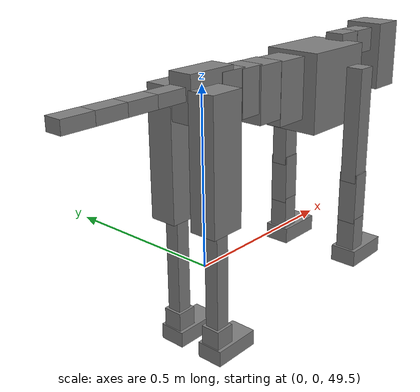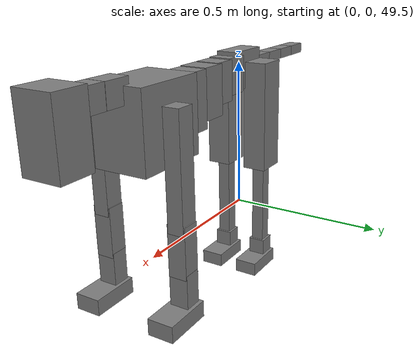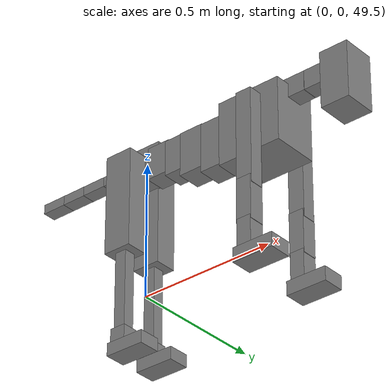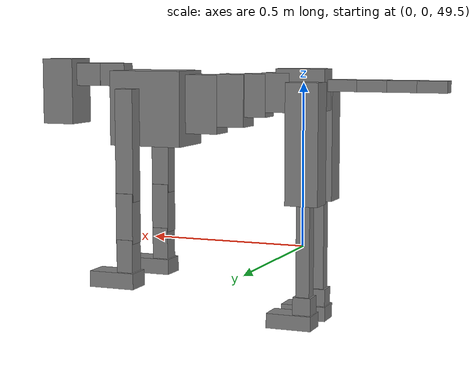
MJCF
<mujoco model="dog">

    <default>
        <joint armature="0.02" stiffness="1" damping="0.2" limited="true"/>
        <geom condim="3" friction="1 0.05 0.05" margin="0.01"/>
        <motor ctrllimited="true" ctrlrange="-1.0 1.0" forcelimited="true" gear="50"/>
    </default>

    <compiler inertiafromgeom="true" angle="radian"/>

    <option timestep="0.016" iterations="50" tolerance="1e-10" solver="Newton" jacobian="dense" cone="pyramidal"/>

    <size nconmax="20000" njmax="60000" nstack="5000000"/>
    <visual>
        <map force="0.1" zfar="30"/>
        <rgba haze="0.15 0.25 0.35 1"/>
        <quality shadowsize="2048"/>
        <global offwidth="800" offheight="800"/>
    </visual>

    <asset>
        <texture type="skybox" builtin="gradient" rgb1="0.3 0.5 0.7" rgb2="0 0 0" width="512" height="512"/>
        <texture name="texplane" type="2d" builtin="checker" rgb1=".2 .3 .4" rgb2=".1 0.15 0.2" width="512" height="512"
                 mark="cross" markrgb=".8 .8 .8"/>
        <texture name="texgeom" type="cube" builtin="flat" mark="cross" width="127" height="1278" rgb1="0.8 0.6 0.4"
                 rgb2="0.8 0.6 0.4" markrgb="1 1 1" random="0.01"/>

        <material name="matplane" reflectance="0.3" texture="texplane" texrepeat="1 1" texuniform="true"/>
        <material name="matgeom" texture="texgeom" texuniform="true" rgba="0.8 0.6 .4 1"/>
    </asset>

    <worldbody>
        <geom name="floor" pos="0 0 0" size="0 0 .25" type="plane" material="matplane" condim="3"/>

        <light directional="false" diffuse=".2 .2 .2" specular="0 0 0" pos="0 0 5" dir="0 0 -1" castshadow="false"/>
        <light mode="targetbodycom" target="torso" directional="false" diffuse=".8 .8 .8" specular="0.3 0.3 0.3"
               pos="0 0 4.0" dir="0 0 -1"/>

        <body name="root" pos="0 0 50">
            <freejoint name="root_1"/>
            <geom type="box" pos="0 0 -0.02" size="0.0774  0.0358  0.063" density="2030"/>

            <body name="spine1" pos="0.054 0 0">
                <joint name="spine1_y" axis="0 1 0" range="0 0.7" limited="true"/>
                <geom type="box" pos="0.02375 0 -0.03" size="0.04375  0.0375  0.05985" density="2030"/>

                <body name="spine2" pos="0.0612 0 0">
                    <joint name="spine2_y" axis="0 1 0" range="-0.15 0.15" limited="true"/>
                    <geom type="box" pos="0.03555  0  -0.04" size="0.04055  0.039  0.06615" density="2030"/>

                    <body name="spine3" pos="0.0730 0 0">
                        <joint name="spine3_y" axis="0 1 0" range="-0.15 0.15" limited="true"/>
                        <geom type="box" pos="0.03555  0  -0.057" size="0.04555  0.0445  0.081" density="2030"/>

                        <body name="spine4" pos="0.0780 0 0">
                            <joint name="spine4_y" axis="0 1 0" range="-0.15 0.15" limited="true"/>
                            <geom type="box" pos="0.05265  0  -0.07" size="0.05265  0.045  0.09135" density="2030"/>

                            <body name="torso" pos="0.1082 0 0">
                                <joint name="torso_y" axis="0 1 0" range="-0.15 0.15" limited="true"/>
                                <geom type="box" pos="0.11925  0  -0.085" size="0.11925  0.085  0.11745"
                                      density="2030"/>

                                <body name="neck1" pos="0.2160  0   0.0180">
                                    <joint name="neck1_y" axis="0 1 0" range="-1.2  -1" limited="true"/>
                                    <geom type="box" pos="0.0423  0  0" size="0.0423  0.03  0.036" density="2325"/>

                                    <body name="neck2" pos="0.0853  0  0">
                                        <joint name="neck2_y" axis="0 1 0" range="0.1  0" limited="true"/>
                                        <geom type="box" pos="0.0423  0  0" size="0.0423  0.03  0.036" density="2325"/>

                                        <body name="head" pos="0.0853  0  0">
                                            <joint name="head_y" axis="0 1 0" range="-0.3  -0.2" limited="true"/>
                                            <geom type="box" pos="0.0531  0  -0.055" size="0.0531  0.06  0.1044"
                                                  density="4030"/>

                                        </body>
                                    </body>
                                </body>

                                <body name="front_shoulder" pos="0.156  0   -0.0480">
                                    <joint name="front_shoulder_y" axis="0 1 0" range="-1 1.5" limited="true"/>
                                    <geom type="box" pos="0 0.13 -0.1482" size="0.0295  0.0252  0.1748" density="1158"/>
                                    <geom type="box" pos="0 -0.13 -0.1482" size="0.0295  0.0252  0.1748"
                                          density="1158"/>

                                    <body name="front_elbow" pos="0  0  -0.2964">
                                        <joint name="front_elbow_y" axis="0 1 0" range="-2 0" limited="true"/>
                                        <geom type="box" pos="0 0.13 -0.0790" size="0.0280  0.0287  0.0790"
                                              density="1081"/>
                                        <geom type="box" pos="0 -0.13 -0.0790" size="0.0280  0.0287  0.0790"
                                              density="1081"/>

                                        <body name="front_wrist" pos="0  0  -0.1580">
                                            <joint name="front_wrist_y" axis="0 1 0" range="-0.2 0" limited="true"/>
                                            <geom type="box" pos="0 0.13 -0.0522" size="0.0265  0.0295  0.0654"
                                                  density="1664"/>
                                            <geom type="box" pos="0 -0.13 -0.0522" size="0.0265  0.0295  0.0654"
                                                  density="1664"/>

                                            <body name="front_finger_end" pos="0  0  -0.1045">
                                                <joint name="front_finger_y" axis="0 1 0" range="-0.4 1"
                                                       limited="true"/>
                                                <geom type="box" pos="0.0408  0.13  -0.0103"
                                                      size="0.0748  0.0408  0.0253" density="1515"/>
                                                <geom type="box" pos="0.0408  -0.13  -0.0103"
                                                      size="0.0748  0.0408  0.0253" density="1515"/>

                                            </body>

                                        </body>
                                    </body>
                                </body>

                            </body>
                        </body>
                    </body>
                </body>
            </body>

            <body name="back_hip" pos="-0.03 0 -0.018">
                <joint name="back_hip_y" axis="0 1 0" range="-1.5 0.3" limited="true"/>
                <geom type="box" pos="0 0.07 -0.1607" size="0.0513  0.0403  0.1835" density="1154"/>
                <geom type="box" pos="0 -0.07 -0.1607" size="0.0513  0.0403  0.1835" density="1154"/>

                <body name="back_knee" pos="0  0  -0.3214">
                    <joint name="back_knee_y" axis="0 1 0" range="0 2.8" limited="true"/>
                    <geom type="box" pos="0 0.07 -0.1560" size="0.0211  0.0208  0.1716" density="1227"/>
                    <geom type="box" pos="0 -0.07 -0.1560" size="0.0211  0.0208  0.1716" density="1227"/>

                    <body name="back_ankle" pos="0  0  -0.3120">
                        <joint name="back_ankle_y" axis="0 1 0" range="-2.2 0" limited="true"/>
                        <geom type="box" pos="0 0.07 -0.0286" size="0.0284  0.0284  0.0399" density="1284"/>
                        <geom type="box" pos="0 -0.07 -0.0286" size="0.0284  0.0284  0.0399" density="1284"/>

                        <body name="back_toe_end" pos="0  0  -0.0572">
                            <joint name="back_toe_y" axis="0 1 0" range="-0.4 1" limited="true"/>
                            <geom type="box" pos="0.0386  0.07  -0.0077" size="0.0708  0.0386  0.0227" density="1515"/>
                            <geom type="box" pos="0.0386  -0.07  -0.0077" size="0.0708  0.0386  0.0227" density="1515"/>

                        </body>
                    </body>
                </body>
            </body>

            <body name="tail1" pos="-0.074 0 -0.006">
                <joint name="tail1_y" axis="0 1 0" range="-0.2 0.2" limited="true"/>
                <geom type="box" pos="-0.0536  0  0" size="0.045  0.025  0.0175" density="1587"/>

                <body name="tail2" pos="-0.09 0 0">
                    <joint name="tail2_y" axis="0 1 0" range="-0.2 0.2" limited="true"/>
                    <geom type="box" pos="-0.0536  0  0" size="0.045  0.025  0.0175" density="1587"/>

                    <body name="tail3" pos="-0.09 0 0">
                        <joint name="tail3_y" axis="0 1 0" range="-0.2 0.2" limited="true"/>
                        <geom type="box" pos="-0.0536  0  0" size="0.045  0.025  0.0175" density="1587"/>

                        <body name="tail4" pos="-0.09 0 0">
                            <joint name="tail4_y" axis="0 1 0" range="-0.2 0.2" limited="true"/>
                            <geom type="box" pos="-0.0536  0  0" size="0.045  0.025  0.0175" density="1587"/>

                        </body>
                    </body>
                </body>
            </body>
        </body>
    </worldbody>

    <actuator>
        <motor joint="spine1_y" forcerange="-150 150     "/>
        <motor joint="spine2_y" forcerange="-150 150     "/>
        <motor joint="spine3_y" forcerange="-150 150     "/>
        <motor joint="spine4_y" forcerange="-150 150     "/>
        <motor joint="torso_y" forcerange="-150 150     "/>
        <motor joint="neck1_y" forcerange="-100 100       "/>
        <motor joint="neck2_y" forcerange="-100 100       "/>
        <motor joint="head_y" forcerange="-150 150       "/>
        <motor joint="front_shoulder_y" forcerange="-141.89 126.19"/>
        <motor joint="front_elbow_y" forcerange="-131.50 176.97"/>
        <motor joint="front_wrist_y" forcerange="-87.06 148.57"/>
        <motor joint="front_finger_y" forcerange="-89.25 88.46"/>
        <motor joint="back_hip_y" forcerange="-347.70 389.29"/>
        <motor joint="back_knee_y" forcerange="-247.37 254.93"/>
        <motor joint="back_angle_y" forcerange="-205.57 148.29"/>
        <motor joint="back_toe_y" forcerange="-96.78 132.37"/>
        <motor joint="tail1_y" forcerange="-50 50     "/>
        <motor joint="tail2_y" forcerange="-50 50     "/>
        <motor joint="tail3_y" forcerange="-50 50     "/>
        <motor joint="tail4_y" forcerange="-50 50     "/>
    </actuator>
</mujoco>
